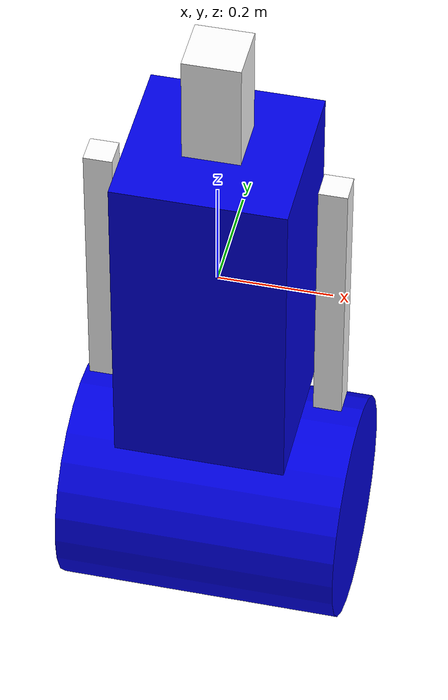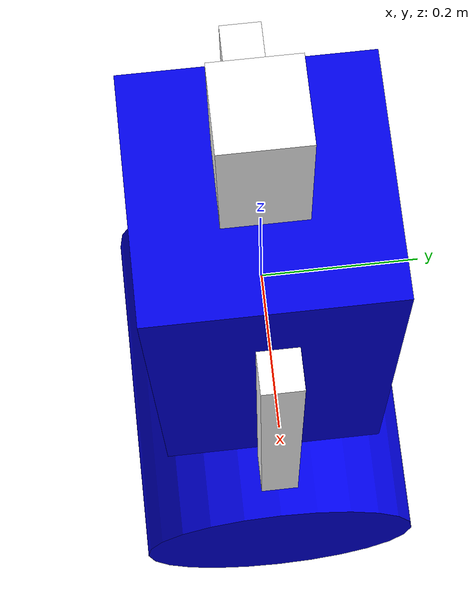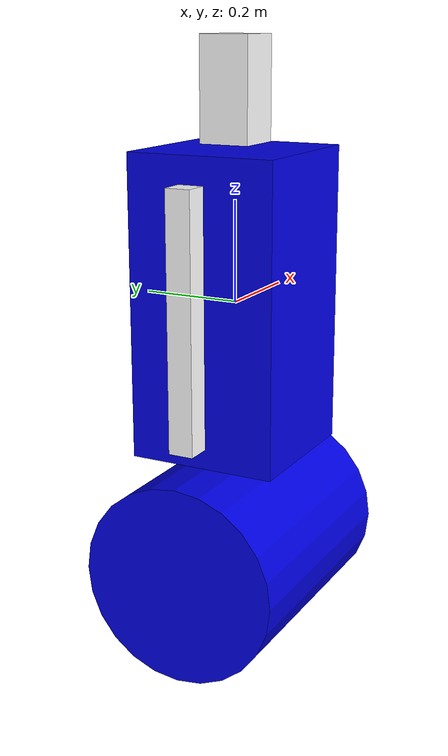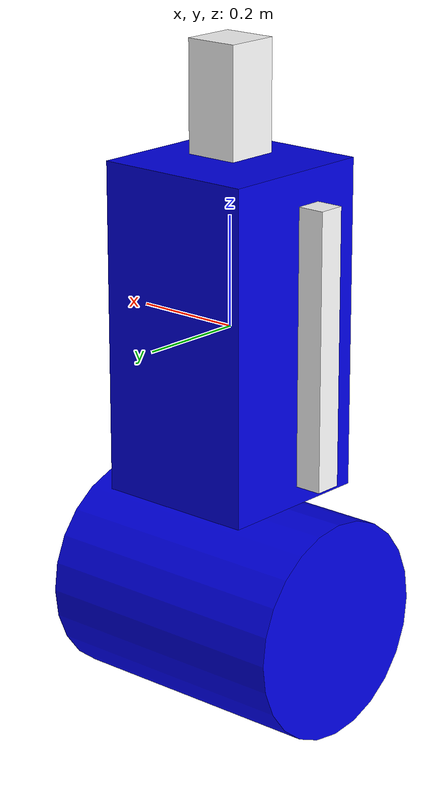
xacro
<?xml version="1.0"?>
<robot name="ro-02-auer">

  <link name="base_link">
    <visual>
      <geometry>
         <box size="0.3 0.3 0.6"/>
      </geometry>
      <material name="blue">
        <color rgba="0 0 0.9 1"/>
      </material>
    </visual>
  </link>

  <link name="head">
    <visual>
      <origin xyz="0 0 0.11"/>
      <geometry>
        <box size="0.1 0.1 0.2"/>
      </geometry>
      <material name="white">
        <color rgba="1 1 1 1"/>
      </material>
    </visual>
  </link>

  <joint name="head_to_base" type="fixed">
    <parent link="base_link"/>
    <child link="head"/>
    <origin xyz="0 0 0.3"/>
  </joint>

  <link name="wheel">
    <visual>
      <origin rpy="0 1.57075 0" xyz="0 0 -0.21"/>
      <geometry>
        <cylinder length="0.5" radius="0.2"/>
      </geometry>
      <material name="blue">
        <color rgba="0 0 0.9 1"/>
      </material>
    </visual>
  </link>

  <joint name="wheel_to_base" type="fixed">
    <parent link="base_link"/>
    <child link="wheel"/>
    <origin xyz="0 0 -0.3"/>
  </joint>

  <link name="arm_right">
    <visual>
      <origin xyz="0.05 0 -0.2"/>
      <geometry>
        <box size="0.05 0.05 0.5"/>
      </geometry>
      <material name="white">
        <color rgba="1 1 1 1"/>
      </material>
    </visual>
  </link>

  <joint name="arm_right_to_base" type="fixed">
    <parent link="base_link"/>
    <child link="arm_right"/>
    <origin xyz="0.15 0 0.2"/>
  </joint>

  <link name="arm_left">
    <visual>
      <origin xyz="-0.05 0 -0.2"/>
      <geometry>
        <box size="0.05 0.05 0.5"/>
      </geometry>
      <material name="white">
        <color rgba="1 1 1 1"/>
      </material>
    </visual>
  </link>

  <joint name="arm_left_to_base" type="continuous">
    <parent link="base_link"/>
    <child link="arm_left"/>
    <axis xyz="1 1 1"/>
    <origin xyz="-0.15 0 0.2"/>
  </joint>
</robot>
